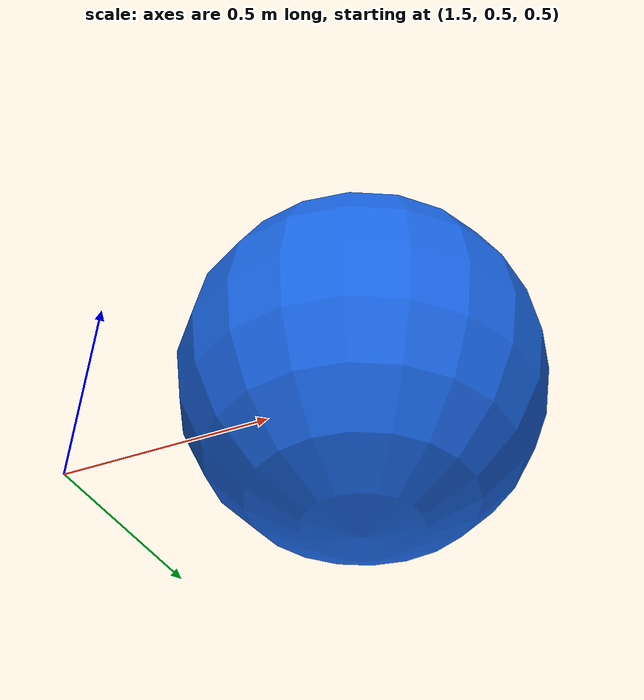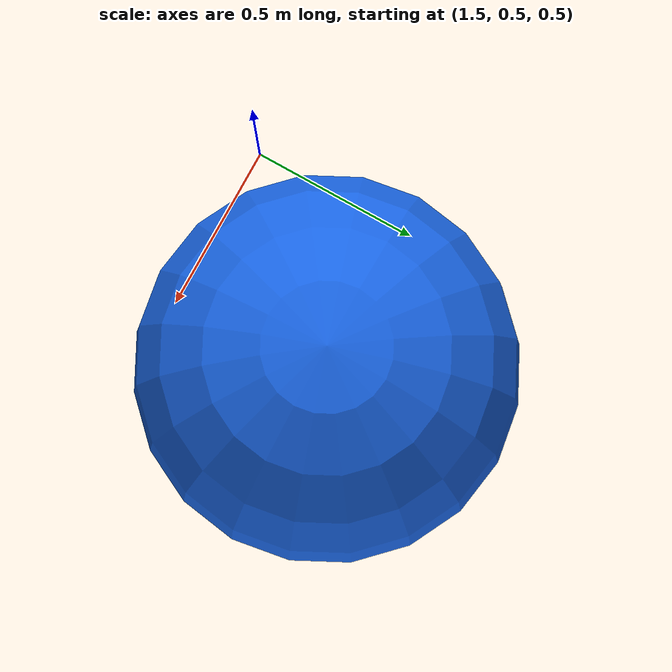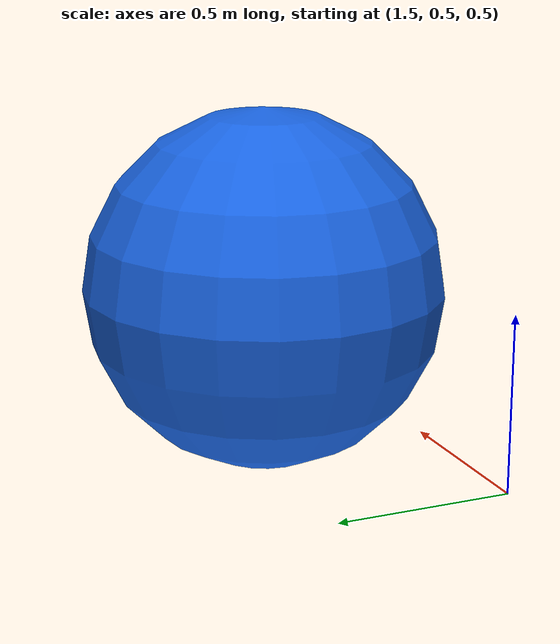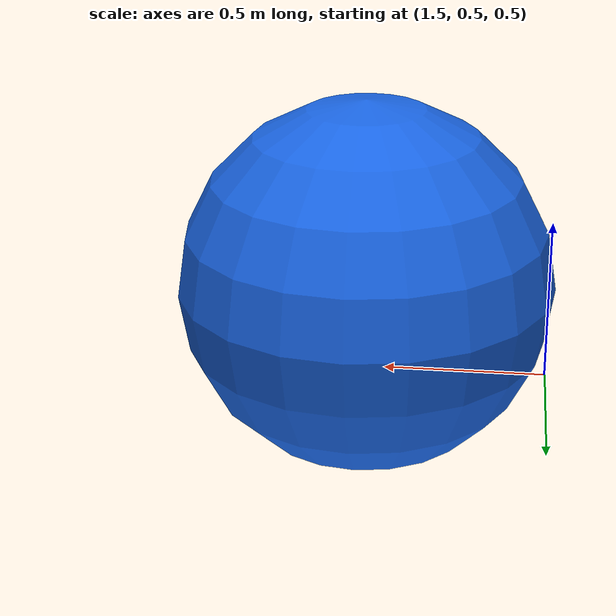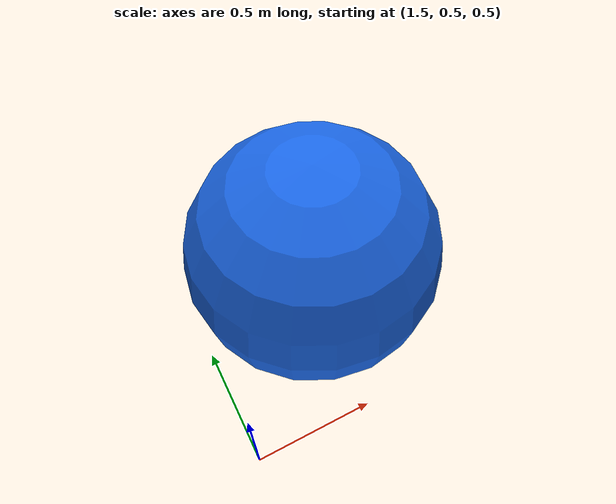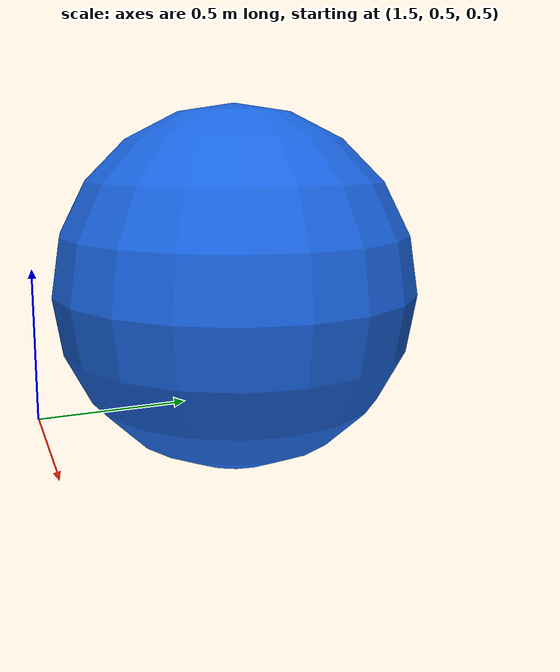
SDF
<?xml version="1.0" ?>
<sdf version="1.9">
  <model name="pushable_ball">
    <!-- Make the ball movable -->
    <static>false</static>

    <!-- Define the ball's pose in the world -->
    <pose>2 1 1 0 0 0</pose>

    <link name="ball_link">

      <!-- Visual appearance -->
      <visual name="ball_visual">
        <geometry>
          <sphere>
            <radius>.5</radius>
          </sphere>
        </geometry>
        <material>
          <ambient>0.1 0.3 0.8 1</ambient>
          <diffuse>0.1 0.4 0.9 1</diffuse>
          <specular>0.5 0.5 0.5 1</specular>
        </material>
      </visual>

      <!-- Collision properties -->
      <collision name="ball_collision">
        <geometry>
          <sphere>
            <radius>.5</radius>
          </sphere>
        </geometry>
        <surface>
          <contact>
            <collide_without_contact>false</collide_without_contact>
            <collide_bitmask>1</collide_bitmask>
          </contact>
          <friction>
            <ode>
              <mu>0.6</mu>
              <mu2>0.6</mu2>
            </ode>
          </friction>
          <bounce>
            <restitution_coefficient>0.4</restitution_coefficient>
            <threshold>1.0</threshold>
          </bounce>
        </surface>
      </collision>

      <!-- Inertial properties (for realistic motion) -->
      <inertial>
        <mass>0.25</mass>
        <inertia>
          <ixx>0.0005</ixx>
          <iyy>0.0005</iyy>
          <izz>0.0005</izz>
        </inertia>
      </inertial>

    </link>
  </model>
</sdf>
